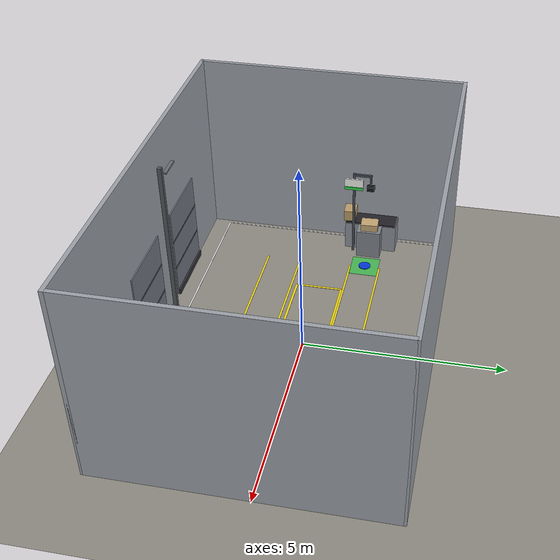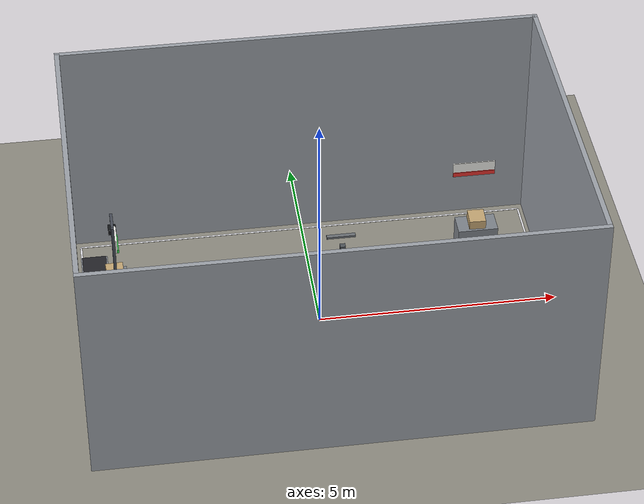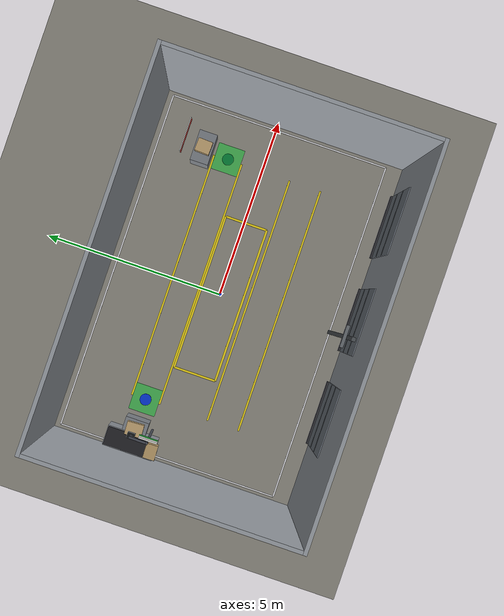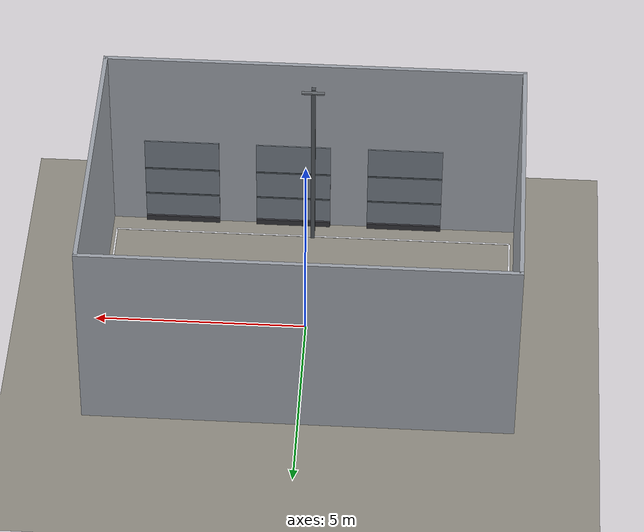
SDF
<sdf version="1.7">
 <world name="parcel_sortation_visibility_cell">
  <atmosphere type="adiabatic"/>
  <gravity>0 0 -9.8</gravity>
  <magnetic_field>6.0e-6 2.3e-5 -4.2e-5</magnetic_field>
  <physics type="ode" name="default_physics">
   <max_step_size>0.004</max_step_size>
   <real_time_factor>1.0</real_time_factor>
   <real_time_update_rate>250</real_time_update_rate>
  </physics>
  <plugin filename="gz-sim-physics-system" name="gz::sim::systems::Physics"/>
  <plugin filename="gz-sim-user-commands-system" name="gz::sim::systems::UserCommands"/>
  <plugin filename="gz-sim-scene-broadcaster-system" name="gz::sim::systems::SceneBroadcaster"/>
  <plugin filename="gz-sim-sensors-system" name="gz::sim::systems::Sensors">
   <render_engine>ogre2</render_engine>
  </plugin>
  <light name="sun" type="directional">
   <pose>0 0 10 0 0 0</pose>
   <diffuse>1.0 1.0 1.0 1</diffuse>
   <specular>0.2 0.2 0.2 1</specular>
   <direction>-0.3 0.2 -0.9</direction>
  </light>
  <scene>
   <ambient>0.58 0.58 0.58 1</ambient>
   <background>0.70 0.72 0.74 1</background>
   <shadows>true</shadows>
  </scene>
  <model name="ground_plane">
   <static>true</static>
   <link name="link">
    <collision name="collision">
     <geometry><plane><normal>0 0 1</normal><size>20 20</size></plane></geometry>
    </collision>
    <visual name="visual">
     <pose>0 -0.25 0 0 0 0</pose>
     <geometry><plane><normal>0 0 1</normal><size>10.0 6.9</size></plane></geometry>
     <material>
      <ambient>0.56 0.55 0.51 1</ambient>
      <diffuse>0.56 0.55 0.51 1</diffuse>
      <specular>0.05 0.05 0.05 1</specular>
     </material>
    </visual>
   </link>
  </model>
  <model name="building_walls">
   <static>true</static>
   <link name="south_wall">
    <pose>0.0 -3.70 2.50 0 0 0</pose>
    <collision name="collision"><geometry><box><size>10.00 0.10 5.00</size></box></geometry></collision>
    <visual name="visual">
     <geometry><box><size>10.00 0.10 5.00</size></box></geometry>
     <material><ambient>0.62 0.64 0.67 1</ambient><diffuse>0.62 0.64 0.67 1</diffuse></material>
    </visual>
   </link>
   <link name="north_wall">
    <pose>0.0  3.20 2.50 0 0 0</pose>
    <collision name="collision"><geometry><box><size>10.00 0.10 5.00</size></box></geometry></collision>
    <visual name="visual">
     <geometry><box><size>10.00 0.10 5.00</size></box></geometry>
     <material><ambient>0.62 0.64 0.67 1</ambient><diffuse>0.62 0.64 0.67 1</diffuse></material>
    </visual>
   </link>
   <link name="west_wall">
    <pose>-4.95 -0.25 2.50 0 0 0</pose>
    <collision name="collision"><geometry><box><size>0.10 6.90 5.00</size></box></geometry></collision>
    <visual name="visual">
     <geometry><box><size>0.10 6.90 5.00</size></box></geometry>
     <material><ambient>0.62 0.64 0.67 1</ambient><diffuse>0.62 0.64 0.67 1</diffuse></material>
    </visual>
   </link>
   <link name="east_wall">
    <pose>4.95 -0.25 2.50 0 0 0</pose>
    <collision name="collision"><geometry><box><size>0.10 6.90 5.00</size></box></geometry></collision>
    <visual name="visual">
     <geometry><box><size>0.10 6.90 5.00</size></box></geometry>
     <material><ambient>0.62 0.64 0.67 1</ambient><diffuse>0.62 0.64 0.67 1</diffuse></material>
    </visual>
   </link>
   <link name="dock_door_1">
    <pose>-2.20 -3.64 1.25 0 0 0</pose>
    <visual name="visual">
     <geometry><box><size>1.80 0.04 2.50</size></box></geometry>
     <material><ambient>0.45 0.48 0.52 1</ambient><diffuse>0.45 0.48 0.52 1</diffuse></material>
    </visual>
   </link>
   <link name="dock_door_2">
    <pose>0.50 -3.64 1.25 0 0 0</pose>
    <visual name="visual">
     <geometry><box><size>1.80 0.04 2.50</size></box></geometry>
     <material><ambient>0.45 0.48 0.52 1</ambient><diffuse>0.45 0.48 0.52 1</diffuse></material>
    </visual>
   </link>
   <link name="dock_door_3">
    <pose>3.20 -3.64 1.25 0 0 0</pose>
    <visual name="visual">
     <geometry><box><size>1.80 0.04 2.50</size></box></geometry>
     <material><ambient>0.45 0.48 0.52 1</ambient><diffuse>0.45 0.48 0.52 1</diffuse></material>
    </visual>
   </link>
   <link name="dock_door_1_slat">
    <pose>-2.20 -3.62 0.85 0 0 0</pose>
    <visual name="visual">
     <geometry><box><size>1.78 0.02 0.04</size></box></geometry>
     <material><ambient>0.32 0.35 0.38 1</ambient><diffuse>0.32 0.35 0.38 1</diffuse></material>
    </visual>
   </link>
   <link name="dock_door_1_slat2">
    <pose>-2.20 -3.62 1.65 0 0 0</pose>
    <visual name="visual">
     <geometry><box><size>1.78 0.02 0.04</size></box></geometry>
     <material><ambient>0.32 0.35 0.38 1</ambient><diffuse>0.32 0.35 0.38 1</diffuse></material>
    </visual>
   </link>
   <link name="dock_door_2_slat">
    <pose>0.50 -3.62 0.85 0 0 0</pose>
    <visual name="visual">
     <geometry><box><size>1.78 0.02 0.04</size></box></geometry>
     <material><ambient>0.32 0.35 0.38 1</ambient><diffuse>0.32 0.35 0.38 1</diffuse></material>
    </visual>
   </link>
   <link name="dock_door_2_slat2">
    <pose>0.50 -3.62 1.65 0 0 0</pose>
    <visual name="visual">
     <geometry><box><size>1.78 0.02 0.04</size></box></geometry>
     <material><ambient>0.32 0.35 0.38 1</ambient><diffuse>0.32 0.35 0.38 1</diffuse></material>
    </visual>
   </link>
   <link name="dock_door_3_slat">
    <pose>3.20 -3.62 0.85 0 0 0</pose>
    <visual name="visual">
     <geometry><box><size>1.78 0.02 0.04</size></box></geometry>
     <material><ambient>0.32 0.35 0.38 1</ambient><diffuse>0.32 0.35 0.38 1</diffuse></material>
    </visual>
   </link>
   <link name="dock_door_3_slat2">
    <pose>3.20 -3.62 1.65 0 0 0</pose>
    <visual name="visual">
     <geometry><box><size>1.78 0.02 0.04</size></box></geometry>
     <material><ambient>0.32 0.35 0.38 1</ambient><diffuse>0.32 0.35 0.38 1</diffuse></material>
    </visual>
   </link>
   <link name="dock_bumper_1">
    <pose>-2.20 -3.60 0.075 0 0 0</pose>
    <visual name="visual">
     <geometry><box><size>1.80 0.06 0.15</size></box></geometry>
     <material><ambient>0.20 0.20 0.22 1</ambient><diffuse>0.20 0.20 0.22 1</diffuse></material>
    </visual>
   </link>
   <link name="dock_bumper_2">
    <pose>0.50 -3.60 0.075 0 0 0</pose>
    <visual name="visual">
     <geometry><box><size>1.80 0.06 0.15</size></box></geometry>
     <material><ambient>0.20 0.20 0.22 1</ambient><diffuse>0.20 0.20 0.22 1</diffuse></material>
    </visual>
   </link>
   <link name="dock_bumper_3">
    <pose>3.20 -3.60 0.075 0 0 0</pose>
    <visual name="visual">
     <geometry><box><size>1.80 0.06 0.15</size></box></geometry>
     <material><ambient>0.20 0.20 0.22 1</ambient><diffuse>0.20 0.20 0.22 1</diffuse></material>
    </visual>
   </link>
  </model>
  <model name="floor_plan_visuals">
   <static>true</static>
   <link name="boundary_south">
    <pose>0.00 -3.20 0.003 0 0 0</pose>
    <visual name="visual">
     <geometry><box><size>9.60 0.04 0.004</size></box></geometry>
     <material><ambient>0.92 0.92 0.94 1</ambient><diffuse>0.92 0.92 0.94 1</diffuse></material>
    </visual>
   </link>
   <link name="boundary_north">
    <pose>0.00  3.00 0.003 0 0 0</pose>
    <visual name="visual">
     <geometry><box><size>9.60 0.04 0.004</size></box></geometry>
     <material><ambient>0.92 0.92 0.94 1</ambient><diffuse>0.92 0.92 0.94 1</diffuse></material>
    </visual>
   </link>
   <link name="boundary_west">
    <pose>-4.80 -0.10 0.003 0 0 0</pose>
    <visual name="visual">
     <geometry><box><size>0.04 6.20 0.004</size></box></geometry>
     <material><ambient>0.92 0.92 0.94 1</ambient><diffuse>0.92 0.92 0.94 1</diffuse></material>
    </visual>
   </link>
   <link name="boundary_east">
    <pose>4.80 -0.10 0.003 0 0 0</pose>
    <visual name="visual">
     <geometry><box><size>0.04 6.20 0.004</size></box></geometry>
     <material><ambient>0.92 0.92 0.94 1</ambient><diffuse>0.92 0.92 0.94 1</diffuse></material>
    </visual>
   </link>
   <link name="rear_lane_south">
    <pose>0.10 0.60 0.005 0 0 0</pose>
    <visual name="visual">
     <geometry><box><size>7.00 0.05 0.005</size></box></geometry>
     <material><ambient>0.95 0.85 0.10 1</ambient><diffuse>0.95 0.85 0.10 1</diffuse></material>
    </visual>
   </link>
   <link name="rear_lane_north">
    <pose>0.10 1.40 0.005 0 0 0</pose>
    <visual name="visual">
     <geometry><box><size>7.00 0.05 0.005</size></box></geometry>
     <material><ambient>0.95 0.85 0.10 1</ambient><diffuse>0.95 0.85 0.10 1</diffuse></material>
    </visual>
   </link>
   <link name="front_lane_south">
    <pose>0.10 -1.70 0.005 0 0 0</pose>
    <visual name="visual">
     <geometry><box><size>7.00 0.05 0.005</size></box></geometry>
     <material><ambient>0.95 0.85 0.10 1</ambient><diffuse>0.95 0.85 0.10 1</diffuse></material>
    </visual>
   </link>
   <link name="front_lane_north">
    <pose>0.10 -0.80 0.005 0 0 0</pose>
    <visual name="visual">
     <geometry><box><size>7.00 0.05 0.005</size></box></geometry>
     <material><ambient>0.95 0.85 0.10 1</ambient><diffuse>0.95 0.85 0.10 1</diffuse></material>
    </visual>
   </link>
   <link name="staging_pad_south">
    <pose>-0.10 -0.65 0.005 0 0 0</pose>
    <visual name="visual">
     <geometry><box><size>4.40 0.06 0.005</size></box></geometry>
     <material><ambient>0.95 0.85 0.10 1</ambient><diffuse>0.95 0.85 0.10 1</diffuse></material>
    </visual>
   </link>
   <link name="staging_pad_north">
    <pose>-0.10  0.55 0.005 0 0 0</pose>
    <visual name="visual">
     <geometry><box><size>4.40 0.06 0.005</size></box></geometry>
     <material><ambient>0.95 0.85 0.10 1</ambient><diffuse>0.95 0.85 0.10 1</diffuse></material>
    </visual>
   </link>
   <link name="staging_pad_west">
    <pose>-2.30 -0.05 0.005 0 0 0</pose>
    <visual name="visual">
     <geometry><box><size>0.06 1.20 0.005</size></box></geometry>
     <material><ambient>0.95 0.85 0.10 1</ambient><diffuse>0.95 0.85 0.10 1</diffuse></material>
    </visual>
   </link>
   <link name="staging_pad_east">
    <pose>2.10 -0.05 0.005 0 0 0</pose>
    <visual name="visual">
     <geometry><box><size>0.06 1.20 0.005</size></box></geometry>
     <material><ambient>0.95 0.85 0.10 1</ambient><diffuse>0.95 0.85 0.10 1</diffuse></material>
    </visual>
   </link>
   <link name="pickup_bay_A">
    <pose>-3.40 1.00 0.032 0 0 0</pose>
    <visual name="visual">
     <transparency>0.32</transparency>
     <geometry><box><size>0.75 0.75 0.014</size></box></geometry>
     <material><ambient>0.20 0.85 0.30 1</ambient><diffuse>0.20 0.85 0.30 1</diffuse></material>
    </visual>
   </link>
   <link name="dropoff_bay_B">
    <pose>3.60 1.00 0.032 0 0 0</pose>
    <visual name="visual">
     <transparency>0.32</transparency>
     <geometry><box><size>0.75 0.75 0.014</size></box></geometry>
     <material><ambient>0.20 0.85 0.30 1</ambient><diffuse>0.20 0.85 0.30 1</diffuse></material>
    </visual>
   </link>
  </model>
  <model name="induction_station">
   <static>true</static>
   <link name="conveyor_frame">
    <pose>-4.55 1.00 0.40 0 0 0</pose>
    <collision name="collision"><geometry><box><size>0.55 1.40 0.80</size></box></geometry></collision>
    <visual name="visual">
     <geometry><box><size>0.55 1.40 0.80</size></box></geometry>
     <material><ambient>0.55 0.57 0.60 1</ambient><diffuse>0.55 0.57 0.60 1</diffuse></material>
    </visual>
   </link>
   <link name="conveyor_belt">
    <pose>-4.55 1.00 0.815 0 0 0</pose>
    <visual name="visual">
     <geometry><box><size>0.50 1.36 0.030</size></box></geometry>
     <material><ambient>0.14 0.14 0.16 1</ambient><diffuse>0.14 0.14 0.16 1</diffuse></material>
    </visual>
   </link>
   <link name="loading_stand">
    <pose>-4.15 1.00 0.40 0 0 0</pose>
    <collision name="collision"><geometry><box><size>0.50 0.65 0.80</size></box></geometry></collision>
    <visual name="visual">
     <geometry><box><size>0.50 0.65 0.80</size></box></geometry>
     <material><ambient>0.50 0.52 0.55 1</ambient><diffuse>0.50 0.52 0.55 1</diffuse></material>
    </visual>
   </link>
   <link name="gantry_column">
    <pose>-4.15 0.55 1.25 0 0 0</pose>
    <collision name="collision"><geometry><box><size>0.06 0.06 2.50</size></box></geometry></collision>
    <visual name="visual">
     <geometry><box><size>0.06 0.06 2.50</size></box></geometry>
     <material><ambient>0.28 0.30 0.34 1</ambient><diffuse>0.28 0.30 0.34 1</diffuse></material>
    </visual>
   </link>
   <link name="gantry_horizontal">
    <pose>-4.15 0.78 2.46 0 0 0</pose>
    <visual name="visual">
     <geometry><box><size>0.06 0.50 0.06</size></box></geometry>
     <material><ambient>0.28 0.30 0.34 1</ambient><diffuse>0.28 0.30 0.34 1</diffuse></material>
    </visual>
   </link>
   <link name="scanner_head_drop">
    <pose>-4.15 1.00 2.30 0 0 0</pose>
    <visual name="visual">
     <geometry><box><size>0.04 0.04 0.30</size></box></geometry>
     <material><ambient>0.28 0.30 0.34 1</ambient><diffuse>0.28 0.30 0.34 1</diffuse></material>
    </visual>
   </link>
   <link name="scanner_head">
    <pose>-4.15 1.00 2.09 0 0 0</pose>
    <visual name="visual">
     <geometry><box><size>0.16 0.20 0.12</size></box></geometry>
     <material><ambient>0.08 0.09 0.10 1</ambient><diffuse>0.08 0.09 0.10 1</diffuse></material>
    </visual>
   </link>
   <link name="induction_sign">
    <pose>-4.10 0.55 2.20 0 0 0</pose>
    <visual name="visual">
     <geometry><box><size>0.04 0.50 0.30</size></box></geometry>
     <material><ambient>0.96 0.96 0.94 1</ambient><diffuse>0.96 0.96 0.94 1</diffuse></material>
    </visual>
   </link>
   <link name="induction_sign_stripe">
    <pose>-4.075 0.55 2.08 0 0 0</pose>
    <visual name="visual">
     <geometry><box><size>0.04 0.50 0.08</size></box></geometry>
     <material><ambient>0.20 0.85 0.30 1</ambient><diffuse>0.20 0.85 0.30 1</diffuse></material>
    </visual>
   </link>
   <link name="ready_tote">
    <pose>-4.15 1.00 0.90 0 0 0.05</pose>
    <visual name="visual">
     <geometry><box><size>0.36 0.46 0.20</size></box></geometry>
     <material><ambient>0.78 0.66 0.46 1</ambient><diffuse>0.78 0.66 0.46 1</diffuse></material>
    </visual>
   </link>
   <link name="conveyor_parcel">
    <pose>-4.55 0.40 0.98 0 0 0.03</pose>
    <visual name="visual">
     <geometry><box><size>0.40 0.32 0.30</size></box></geometry>
     <material><ambient>0.74 0.62 0.42 1</ambient><diffuse>0.74 0.62 0.42 1</diffuse></material>
    </visual>
   </link>
  </model>
  <model name="sortwall_dropoff">
   <static>true</static>
   <link name="handoff_table">
    <pose>3.60 1.70 0.40 0 0 0</pose>
    <collision name="collision"><geometry><box><size>0.85 0.50 0.80</size></box></geometry></collision>
    <visual name="visual">
     <geometry><box><size>0.85 0.50 0.80</size></box></geometry>
     <material><ambient>0.50 0.52 0.55 1</ambient><diffuse>0.50 0.52 0.55 1</diffuse></material>
    </visual>
   </link>
   <link name="dropoff_table_tote">
    <pose>3.60 1.70 0.90 0 0 -0.04</pose>
    <visual name="visual">
     <geometry><box><size>0.35 0.40 0.20</size></box></geometry>
     <material><ambient>0.78 0.66 0.46 1</ambient><diffuse>0.78 0.66 0.46 1</diffuse></material>
    </visual>
   </link>
   <link name="sortwall_c_sign">
    <pose>3.60 2.19 1.90 0 0 0</pose>
    <visual name="visual">
     <geometry><box><size>0.90 0.02 0.32</size></box></geometry>
     <material><ambient>0.96 0.96 0.94 1</ambient><diffuse>0.96 0.96 0.94 1</diffuse></material>
    </visual>
   </link>
   <link name="sortwall_c_stripe">
    <pose>3.60 2.175 1.78 0 0 0</pose>
    <visual name="visual">
     <geometry><box><size>0.90 0.02 0.10</size></box></geometry>
     <material><ambient>0.92 0.20 0.18 1</ambient><diffuse>0.92 0.20 0.18 1</diffuse></material>
    </visual>
   </link>
  </model>
  <model name="mission_floor_markers">
   <static>true</static>
   <link name="A_induction_pickup">
    <pose>-3.40 1.00 0.055 0 0 0</pose>
    <visual name="visual">
     <geometry><cylinder><radius>0.16</radius><length>0.018</length></cylinder></geometry>
     <material><ambient>0.02 0.22 0.86 1</ambient><diffuse>0.02 0.22 0.86 1</diffuse></material>
    </visual>
   </link>
   <link name="B_sortwall_dropoff">
    <pose>3.60 1.00 0.057 0 0 0</pose>
    <visual name="visual">
     <geometry><cylinder><radius>0.16</radius><length>0.018</length></cylinder></geometry>
     <material><ambient>0.02 0.52 0.22 1</ambient><diffuse>0.02 0.52 0.22 1</diffuse></material>
    </visual>
   </link>
  </model>
  <model name="camera_mount">
   <static>true</static>
   <link name="column">
    <pose>0.00 -3.20 2.34 0 0 0</pose>
    <visual name="visual">
     <cast_shadows>false</cast_shadows>
     <geometry><box><size>0.10 0.10 4.72</size></box></geometry>
     <material><ambient>0.32 0.34 0.36 1</ambient><diffuse>0.32 0.34 0.36 1</diffuse></material>
    </visual>
   </link>
   <link name="camera_arm">
    <pose>0.00 -2.98 4.74 0 0 1.5708</pose>
    <visual name="visual">
     <cast_shadows>false</cast_shadows>
     <geometry><box><size>0.08 0.54 0.04</size></box></geometry>
     <material><ambient>0.42 0.44 0.46 1</ambient><diffuse>0.42 0.44 0.46 1</diffuse></material>
    </visual>
   </link>
  </model>
  <include>
   <name>external_camera</name>
   <uri>model://external_camera</uri>
   <pose>0.00 -2.75 4.75 0 0.95 1.5708</pose>
  </include>
 </world>
</sdf>

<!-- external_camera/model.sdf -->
<sdf version="1.6">
  <model name="external_camera">
    <static>true</static>
    <pose>0 0 0 0 0 0</pose>
    <link name="link">
      <sensor name="camera" type="camera">
        <camera>
          <horizontal_fov>1.5708</horizontal_fov> <!-- 90 degrees -->
          <image>
            <width>1280</width>
            <height>720</height>
          </image>
          <clip>
            <near>0.1</near>
            <far>100</far>
          </clip>
        </camera>
        <always_on>1</always_on>
        <update_rate>30</update_rate>
        <visualize>false</visualize>
        <topic>external_camera/image_raw</topic>
      </sensor>
      <sensor name="segmentation_camera" type="segmentation">
        <camera>
          <segmentation_type>semantic</segmentation_type>
          <horizontal_fov>1.5708</horizontal_fov>
          <image>
            <width>1280</width>
            <height>720</height>
          </image>
          <clip>
            <near>0.1</near>
            <far>100</far>
          </clip>
        </camera>
        <always_on>1</always_on>
        <update_rate>30</update_rate>
        <visualize>false</visualize>
        <topic>external_camera/segmentation</topic>
      </sensor>
    </link>
  </model>
</sdf>
